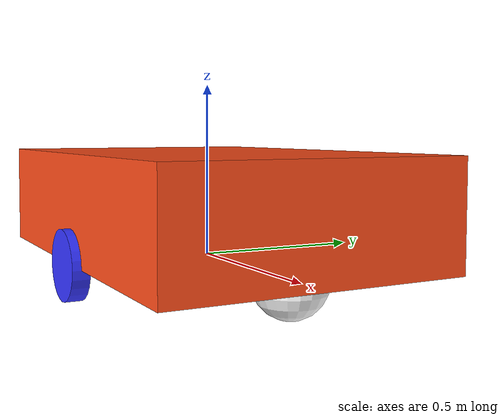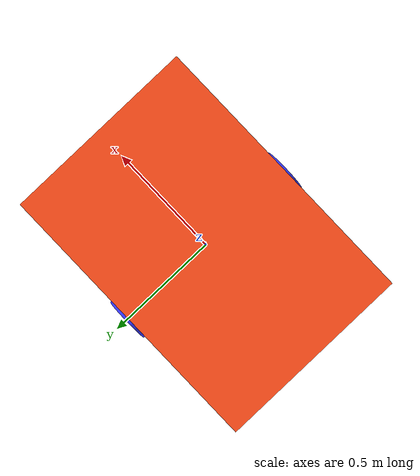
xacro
<?xml version="1.0"?>
<robot xmlns:xacro="http://www.ros.org/wiki/xacro">

    <xacro:include filename="inertial_macros.xacro"/>

    <!-- Updated Properties -->
    <xacro:property name="chassis_length" value="1.22"/>
    <xacro:property name="chassis_width" value="0.84"/>
    <xacro:property name="chassis_height" value="0.305"/>
    <xacro:property name="chassis_mass" value="35.0"/>
    <xacro:property name="wheel_radius" value="0.10"/>
    <xacro:property name="wheel_thickness" value="0.05"/>
    <xacro:property name="wheel_mass" value="2.0"/>
    <xacro:property name="caster_wheel_radius" value="0.1"/>
    <xacro:property name="caster_wheel_mass" value="1.0"/>

    <!-- Adjust offsets -->
    <xacro:property name="wheel_offset_x" value="0.0"/>
    <xacro:property name="wheel_offset_y" value="0.42"/>
    <xacro:property name="wheel_offset_z" value="0.0"/>
    <xacro:property name="caster_front_offset_x" value="0.45"/>
    <xacro:property name="caster_back_offset_x" value="-0.45"/>
    <xacro:property name="caster_wheel_offset_z" value="0.0"/>

    <!-- Materials -->
    <material name="white">
        <color rgba="1 1 1 1" />
    </material>

    <material name="orange">
        <color rgba="1 0.3 0.1 1"/>
    </material>

    <material name="blue">
        <color rgba="0.2 0.2 1 1"/>
    </material>

    <!-- BASE LINK -->
    <link name="base_link"></link>

    <!-- BASE_FOOTPRINT LINK -->
    <joint name="base_footprint_joint" type="fixed">
        <parent link="base_link"/>
        <child link="base_footprint"/>
        <origin xyz="0 0 0" rpy="0 0 0"/>
    </joint>

    <link name="base_footprint"></link>

    <!-- CHASSIS LINK -->
    <joint name="chassis_joint" type="fixed">
        <parent link="base_link"/>
        <child link="chassis"/>
        <origin xyz="0 0 ${-wheel_offset_z}"/>
    </joint>

    <link name="chassis">
        <visual>
            <origin xyz="0 0 ${chassis_height/2}"/>
            <geometry>
                <box size="${chassis_length} ${chassis_width} ${chassis_height}"/>
            </geometry>
            <material name="orange"/>
        </visual>
        <collision>
            <origin xyz="0 0 ${chassis_height/2}"/>
            <geometry>
                <box size="${chassis_length} ${chassis_width} ${chassis_height}"/>
            </geometry>
        </collision>
        <xacro:inertial_box mass="${chassis_mass}" x="${chassis_length}" y="${chassis_width}" z="${chassis_height}">
            <origin xyz="0 0 ${chassis_height/2}" rpy="0 0 0"/>
        </xacro:inertial_box>
    </link>

    <gazebo reference="chassis">
        <material>Gazebo/Orange</material>
    </gazebo>

    <!-- WHEELS -->
    <joint name="left_wheel_joint" type="continuous">
        <parent link="base_link"/>
        <child link="left_wheel"/>
        <origin xyz="0 ${wheel_offset_y} ${wheel_offset_z}" rpy="-${pi/2} 0 0" />
        <axis xyz="0 0 1"/>
    </joint>

    <link name="left_wheel">
        <visual>
            <geometry>
                <cylinder radius="${wheel_radius}" length="${wheel_thickness}"/>
            </geometry>
            <material name="blue"/>
        </visual>
        <collision>
            <geometry>
                <cylinder radius="${wheel_radius}" length="${wheel_thickness}"/>
            </geometry>
        </collision>
        <xacro:inertial_cylinder mass="${wheel_mass}" length="${wheel_thickness}" radius="${wheel_radius}">
            <origin xyz="0 0 0" rpy="0 0 0"/>
        </xacro:inertial_cylinder>
    </link>

    <gazebo reference="left_wheel">
        <material>Gazebo/Blue</material>
    </gazebo>

    <joint name="right_wheel_joint" type="continuous">
        <parent link="base_link"/>
        <child link="right_wheel"/>
        <origin xyz="0 ${-wheel_offset_y} ${wheel_offset_z}" rpy="${pi/2} 0 0" />
        <axis xyz="0 0 -1"/>
    </joint>

    <link name="right_wheel">
        <visual>
            <geometry>
                <cylinder radius="${wheel_radius}" length="${wheel_thickness}"/>
            </geometry>
            <material name="blue"/>
        </visual>
        <collision>
            <geometry>
                <cylinder radius="${wheel_radius}" length="${wheel_thickness}"/>
            </geometry>
        </collision>
        <xacro:inertial_cylinder mass="${wheel_mass}" length="${wheel_thickness}" radius="${wheel_radius}">
            <origin xyz="0 0 0" rpy="0 0 0"/>
        </xacro:inertial_cylinder>
    </link>

    <gazebo reference="right_wheel">
        <material>Gazebo/Blue</material>
    </gazebo>

    <!-- FRONT CASTER WHEEL -->
    <joint name="front_caster_wheel_joint" type="fixed">
        <parent link="chassis"/>
        <child link="front_caster_wheel"/>
        <origin xyz="${caster_front_offset_x} 0 ${caster_wheel_offset_z}"/>
    </joint>

    <link name="front_caster_wheel">
        <visual>
            <geometry>
                <sphere radius="${caster_wheel_radius}"/>
            </geometry>
            <material name="white"/>
        </visual>
        <collision>
            <geometry>
                <sphere radius="${caster_wheel_radius}"/>
            </geometry>
        </collision>
        <xacro:inertial_sphere mass="${caster_wheel_mass}" radius="${caster_wheel_radius}">
            <origin xyz="0 0 0" rpy="0 0 0"/>
        </xacro:inertial_sphere>
    </link>
    <gazebo reference="front_caster_wheel">
        <material>Gazebo/White</material>
        <mu1 value="0.001"/>
        <mu2 value="0.001"/>
    </gazebo>

    <!-- REAR CASTER WHEEL -->
    <joint name="rear_caster_wheel_joint" type="fixed">
        <parent link="chassis"/>
        <child link="rear_caster_wheel"/>
        <origin xyz="${caster_back_offset_x} 0 ${caster_wheel_offset_z}"/>
    </joint>

    <link name="rear_caster_wheel">
        <visual>
            <geometry>
                <sphere radius="${caster_wheel_radius}"/>
            </geometry>
            <material name="white"/>
        </visual>
        <collision>
            <geometry>
                <sphere radius="${caster_wheel_radius}"/>
            </geometry>
        </collision>
        <xacro:inertial_sphere mass="${caster_wheel_mass}" radius="${caster_wheel_radius}">
            <origin xyz="0 0 0" rpy="0 0 0"/>
        </xacro:inertial_sphere>
    </link>

<gazebo reference="rear_caster_wheel">
        <material>Gazebo/White</material>
        <mu1 value="0.001"/>
        <mu2 value="0.001"/>
    </gazebo>

</robot>
